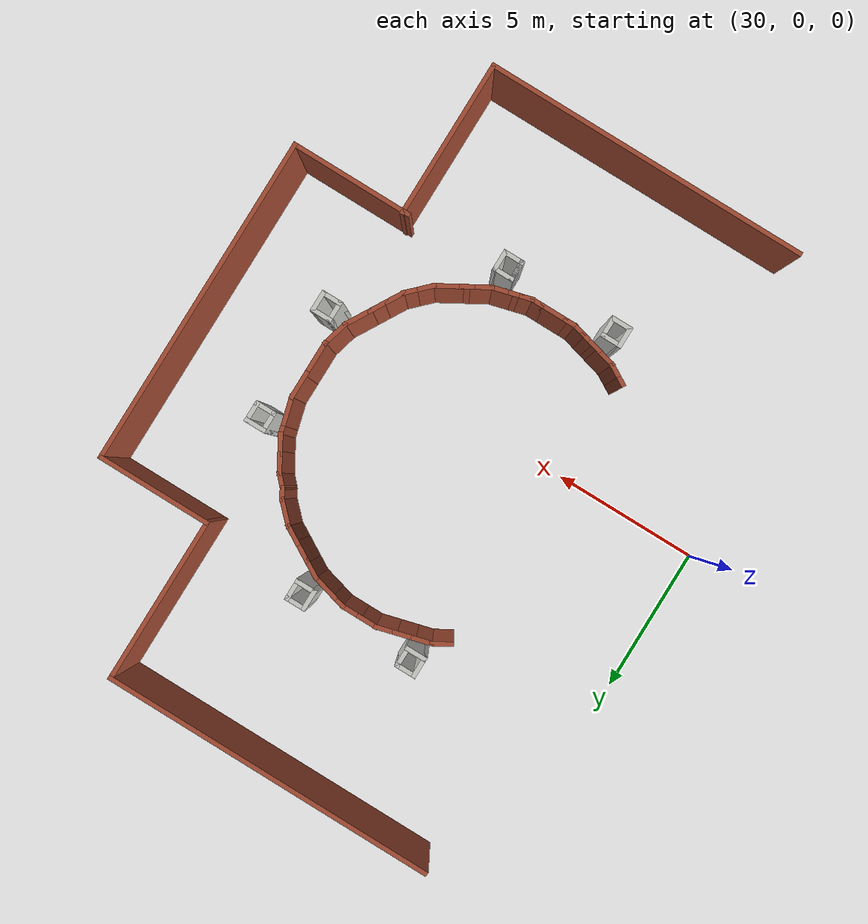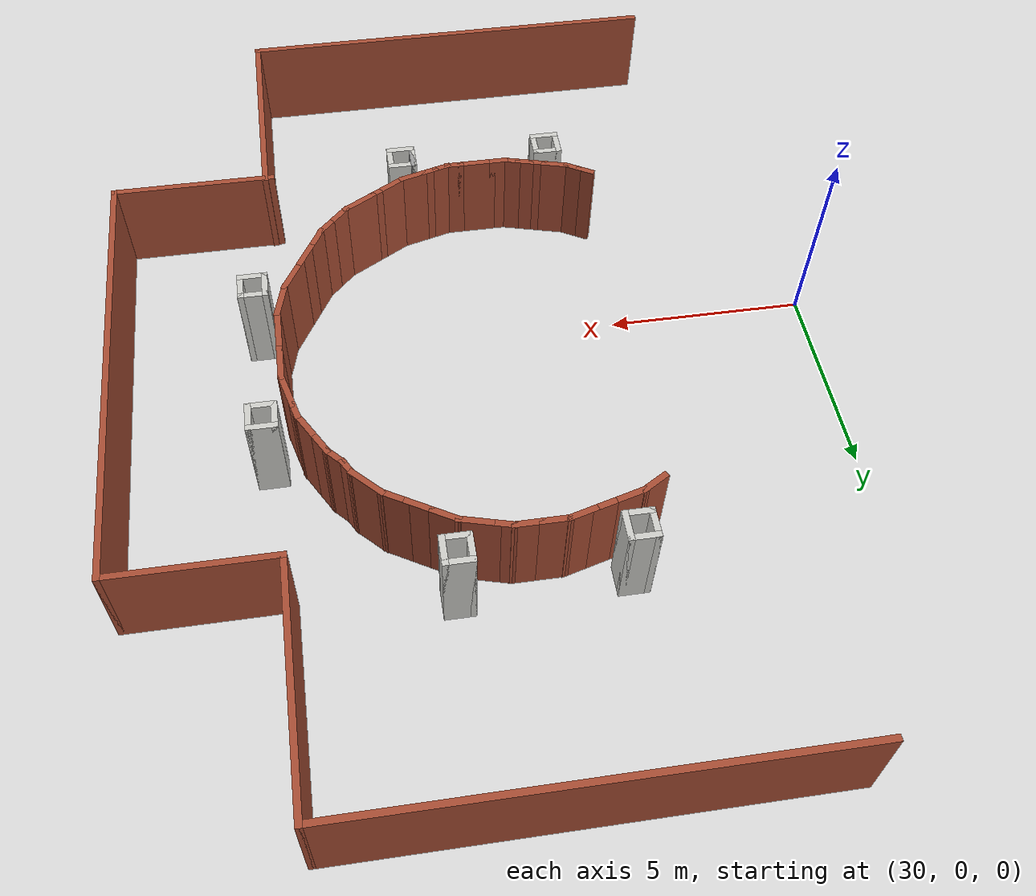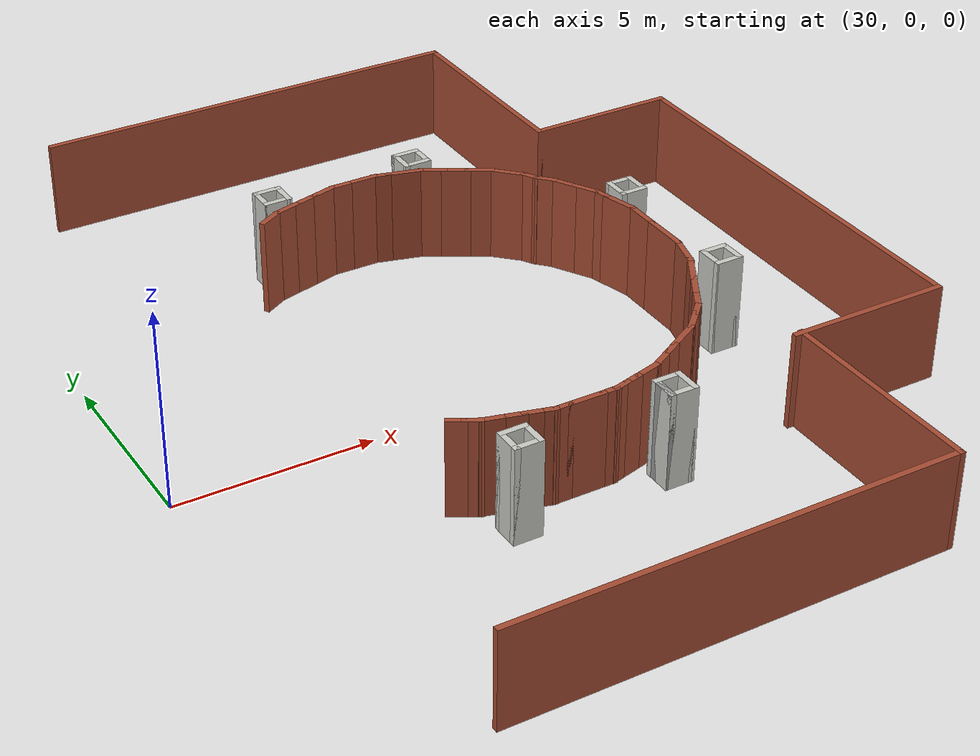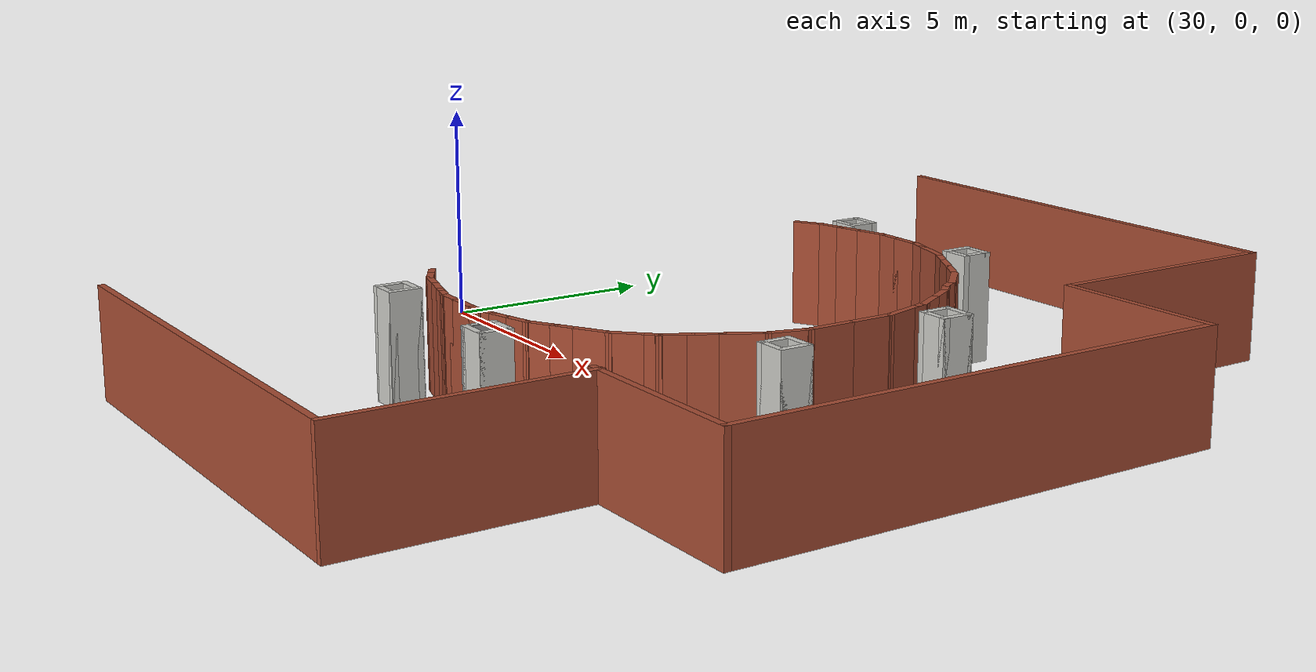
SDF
<sdf version="1.7">
 <model name="Planta1_TD">
  <pose>-6.73335 -7.75071 0 0 -0 0</pose>
  <link name="Wall_182">
   <collision name="Wall_182_Collision">
    <geometry><box><size>11.25 0.15 2.5</size></box></geometry>
    <pose>0 0 1.25 0 -0 0</pose>
   </collision>
   <visual name="Wall_182_Visual">
    <pose>0 0 1.25 0 -0 0</pose>
    <geometry><box><size>11.25 0.15 2.5</size></box></geometry>
    <material>
     <script><uri>file://media/materials/scripts/gazebo.material</uri><name>Gazebo/Bricks</name></script>
     <ambient>1 1 1 1</ambient>
    </material>
    <meta><layer>0</layer></meta>
   </visual>
   <pose>44.8522 -1.83801 0 0 -0 0</pose>
  </link>
  <link name="Wall_183">
   <collision name="Wall_183_Collision">
    <geometry><box><size>5.5 0.15 2.5</size></box></geometry>
    <pose>0 0 1.25 0 -0 0</pose>
   </collision>
   <visual name="Wall_183_Visual">
    <pose>0 0 1.25 0 -0 0</pose>
    <geometry><box><size>5.5 0.15 2.5</size></box></geometry>
    <material>
     <script><uri>file://media/materials/scripts/gazebo.material</uri><name>Gazebo/Bricks</name></script>
     <ambient>1 1 1 1</ambient>
    </material>
    <meta><layer>0</layer></meta>
   </visual>
   <pose>50.4022 0.836985 0 0 -0 1.5708</pose>
  </link>
  <link name="Wall_187">
   <collision name="Wall_187_Collision">
    <geometry><box><size>11.5 0.15 2.5</size></box></geometry>
    <pose>0 0 1.25 0 -0 0</pose>
   </collision>
   <visual name="Wall_187_Visual">
    <pose>0 0 1.25 0 -0 0</pose>
    <geometry><box><size>11.5 0.15 2.5</size></box></geometry>
    <material>
     <script><uri>file://media/materials/scripts/gazebo.material</uri><name>Gazebo/Bricks</name></script>
     <ambient>1 1 1 1</ambient>
    </material>
    <meta><layer>0</layer></meta>
   </visual>
   <pose>44.8115 20.4264 0 0 -0 0</pose>
  </link>
  <link name="Wall_188">
   <collision name="Wall_188_Collision">
    <geometry><box><size>5.75 0.15 2.5</size></box></geometry>
    <pose>0 0 1.25 0 -0 0</pose>
   </collision>
   <visual name="Wall_188_Visual">
    <pose>0 0 1.25 0 -0 0</pose>
    <geometry><box><size>5.75 0.15 2.5</size></box></geometry>
    <material>
     <script><uri>file://media/materials/scripts/gazebo.material</uri><name>Gazebo/Bricks</name></script>
     <ambient>1 1 1 1</ambient>
    </material>
    <meta><layer>0</layer></meta>
   </visual>
   <pose>50.4865 17.6264 0 0 -0 -1.5708</pose>
  </link>
  <link name="Wall_189">
   <collision name="Wall_189_Collision">
    <geometry><box><size>4 0.15 2.5</size></box></geometry>
    <pose>0 0 1.25 0 -0 0</pose>
   </collision>
   <visual name="Wall_189_Visual">
    <pose>0 0 1.25 0 -0 0</pose>
    <geometry><box><size>4 0.15 2.5</size></box></geometry>
    <material>
     <script><uri>file://media/materials/scripts/gazebo.material</uri><name>Gazebo/Bricks</name></script>
     <ambient>1 1 1 1</ambient>
    </material>
    <meta><layer>0</layer></meta>
   </visual>
   <pose>52.4115 14.8264 0 0 -0 0</pose>
  </link>
  <link name="Wall_190">
   <collision name="Wall_190_Collision">
    <geometry><box><size>11.5 0.15 2.5</size></box></geometry>
    <pose>0 0 1.25 0 -0 0</pose>
   </collision>
   <visual name="Wall_190_Visual">
    <pose>0 0 1.25 0 -0 0</pose>
    <geometry><box><size>11.5 0.15 2.5</size></box></geometry>
    <material>
     <script><uri>file://media/materials/scripts/gazebo.material</uri><name>Gazebo/Bricks</name></script>
     <ambient>1 1 1 1</ambient>
    </material>
    <meta><layer>0</layer></meta>
   </visual>
   <pose>54.3365 9.1514 0 0 -0 -1.5708</pose>
  </link>
  <link name="Wall_191">
   <collision name="Wall_191_Collision">
    <geometry><box><size>4.25 0.15 2.5</size></box></geometry>
    <pose>0 0 1.25 0 -0 0</pose>
   </collision>
   <visual name="Wall_191_Visual">
    <pose>0 0 1.25 0 -0 0</pose>
    <geometry><box><size>4.25 0.15 2.5</size></box></geometry>
    <material>
     <script><uri>file://media/materials/scripts/gazebo.material</uri><name>Gazebo/Bricks</name></script>
     <ambient>1 1 1 1</ambient>
    </material>
    <meta><layer>0</layer></meta>
   </visual>
   <pose>52.2865 3.4764 0 0 -0 3.14159</pose>
  </link>
  <link name="Wall_264">
   <collision name="Wall_264_Collision">
    <geometry><box><size>0.75 0.15 2.5</size></box></geometry>
    <pose>0 0 1.25 0 -0 0</pose>
   </collision>
   <visual name="Wall_264_Visual">
    <pose>0 0 1.25 0 -0 0</pose>
    <geometry><box><size>0.75 0.15 2.5</size></box></geometry>
    <material>
     <script><uri>file://media/materials/scripts/gazebo.material</uri><name>Gazebo/CeilingTiled</name></script>
     <ambient>1 1 1 1</ambient>
    </material>
    <meta><layer>0</layer></meta>
   </visual>
   <pose>42.8999 15.4624 0 0 -0 0</pose>
  </link>
  <link name="Wall_265">
   <collision name="Wall_265_Collision">
    <geometry><box><size>0.75 0.15 2.5</size></box></geometry>
    <pose>0 0 1.25 0 -0 0</pose>
   </collision>
   <visual name="Wall_265_Visual">
    <pose>0 0 1.25 0 -0 0</pose>
    <geometry><box><size>0.75 0.15 2.5</size></box></geometry>
    <material>
     <script><uri>file://media/materials/scripts/gazebo.material</uri><name>Gazebo/CeilingTiled</name></script>
     <ambient>1 1 1 1</ambient>
    </material>
    <meta><layer>0</layer></meta>
   </visual>
   <pose>43.1999 15.1624 0 0 -0 -1.5708</pose>
  </link>
  <link name="Wall_266">
   <collision name="Wall_266_Collision">
    <geometry><box><size>0.75 0.15 2.5</size></box></geometry>
    <pose>0 0 1.25 0 -0 0</pose>
   </collision>
   <visual name="Wall_266_Visual">
    <pose>0 0 1.25 0 -0 0</pose>
    <geometry><box><size>0.75 0.15 2.5</size></box></geometry>
    <material>
     <script><uri>file://media/materials/scripts/gazebo.material</uri><name>Gazebo/CeilingTiled</name></script>
     <ambient>1 1 1 1</ambient>
    </material>
    <meta><layer>0</layer></meta>
   </visual>
   <pose>42.8999 14.8624 0 0 -0 3.14159</pose>
  </link>
  <link name="Wall_267">
   <collision name="Wall_267_Collision">
    <geometry><box><size>0.75 0.15 2.5</size></box></geometry>
    <pose>0 0 1.25 0 -0 0</pose>
   </collision>
   <visual name="Wall_267_Visual">
    <pose>0 0 1.25 0 -0 0</pose>
    <geometry><box><size>0.75 0.15 2.5</size></box></geometry>
    <material>
     <script><uri>file://media/materials/scripts/gazebo.material</uri><name>Gazebo/CeilingTiled</name></script>
     <ambient>1 1 1 1</ambient>
    </material>
    <meta><layer>0</layer></meta>
   </visual>
   <pose>42.5999 15.1624 0 0 -0 1.5708</pose>
  </link>
  <link name="Wall_269">
   <collision name="Wall_269_Collision">
    <geometry><box><size>0.75 0.15 2.5</size></box></geometry>
    <pose>0 0 1.25 0 -0 0</pose>
   </collision>
   <visual name="Wall_269_Visual">
    <pose>0 0 1.25 0 -0 0</pose>
    <geometry><box><size>0.75 0.15 2.5</size></box></geometry>
    <material>
     <script><uri>file://media/materials/scripts/gazebo.material</uri><name>Gazebo/CeilingTiled</name></script>
     <ambient>1 1 1 1</ambient>
    </material>
    <meta><layer>0</layer></meta>
   </visual>
   <pose>46.8623 15.4923 0 0 -0 0</pose>
  </link>
  <link name="Wall_270">
   <collision name="Wall_270_Collision">
    <geometry><box><size>0.75 0.15 2.5</size></box></geometry>
    <pose>0 0 1.25 0 -0 0</pose>
   </collision>
   <visual name="Wall_270_Visual">
    <pose>0 0 1.25 0 -0 0</pose>
    <geometry><box><size>0.75 0.15 2.5</size></box></geometry>
    <material>
     <script><uri>file://media/materials/scripts/gazebo.material</uri><name>Gazebo/CeilingTiled</name></script>
     <ambient>1 1 1 1</ambient>
    </material>
    <meta><layer>0</layer></meta>
   </visual>
   <pose>47.1623 15.1923 0 0 -0 -1.5708</pose>
  </link>
  <link name="Wall_271">
   <collision name="Wall_271_Collision">
    <geometry><box><size>0.75 0.15 2.5</size></box></geometry>
    <pose>0 0 1.25 0 -0 0</pose>
   </collision>
   <visual name="Wall_271_Visual">
    <pose>0 0 1.25 0 -0 0</pose>
    <geometry><box><size>0.75 0.15 2.5</size></box></geometry>
    <material>
     <script><uri>file://media/materials/scripts/gazebo.material</uri><name>Gazebo/CeilingTiled</name></script>
     <ambient>1 1 1 1</ambient>
    </material>
    <meta><layer>0</layer></meta>
   </visual>
   <pose>46.8623 14.8923 0 0 -0 3.14159</pose>
  </link>
  <link name="Wall_272">
   <collision name="Wall_272_Collision">
    <geometry><box><size>0.75 0.15 2.5</size></box></geometry>
    <pose>0 0 1.25 0 -0 0</pose>
   </collision>
   <visual name="Wall_272_Visual">
    <pose>0 0 1.25 0 -0 0</pose>
    <geometry><box><size>0.75 0.15 2.5</size></box></geometry>
    <material>
     <script><uri>file://media/materials/scripts/gazebo.material</uri><name>Gazebo/CeilingTiled</name></script>
     <ambient>1 1 1 1</ambient>
    </material>
    <meta><layer>0</layer></meta>
   </visual>
   <pose>46.5623 15.1923 0 0 -0 1.5708</pose>
  </link>
  <link name="Wall_274">
   <collision name="Wall_274_Collision">
    <geometry><box><size>0.75 0.15 2.5</size></box></geometry>
    <pose>0 0 1.25 0 -0 0</pose>
   </collision>
   <visual name="Wall_274_Visual">
    <pose>0 0 1.25 0 -0 0</pose>
    <geometry><box><size>0.75 0.15 2.5</size></box></geometry>
    <material>
     <script><uri>file://media/materials/scripts/gazebo.material</uri><name>Gazebo/CeilingTiled</name></script>
     <ambient>1 1 1 1</ambient>
    </material>
    <meta><layer>0</layer></meta>
   </visual>
   <pose>50.8098 11.485 0 0 -0 0</pose>
  </link>
  <link name="Wall_275">
   <collision name="Wall_275_Collision">
    <geometry><box><size>0.75 0.15 2.5</size></box></geometry>
    <pose>0 0 1.25 0 -0 0</pose>
   </collision>
   <visual name="Wall_275_Visual">
    <pose>0 0 1.25 0 -0 0</pose>
    <geometry><box><size>0.75 0.15 2.5</size></box></geometry>
    <material>
     <script><uri>file://media/materials/scripts/gazebo.material</uri><name>Gazebo/CeilingTiled</name></script>
     <ambient>1 1 1 1</ambient>
    </material>
    <meta><layer>0</layer></meta>
   </visual>
   <pose>51.1098 11.185 0 0 -0 -1.5708</pose>
  </link>
  <link name="Wall_276">
   <collision name="Wall_276_Collision">
    <geometry><box><size>0.75 0.15 2.5</size></box></geometry>
    <pose>0 0 1.25 0 -0 0</pose>
   </collision>
   <visual name="Wall_276_Visual">
    <pose>0 0 1.25 0 -0 0</pose>
    <geometry><box><size>0.75 0.15 2.5</size></box></geometry>
    <material>
     <script><uri>file://media/materials/scripts/gazebo.material</uri><name>Gazebo/CeilingTiled</name></script>
     <ambient>1 1 1 1</ambient>
    </material>
    <meta><layer>0</layer></meta>
   </visual>
   <pose>50.8098 10.885 0 0 -0 3.14159</pose>
  </link>
  <link name="Wall_277">
   <collision name="Wall_277_Collision">
    <geometry><box><size>0.75 0.15 2.5</size></box></geometry>
    <pose>0 0 1.25 0 -0 0</pose>
   </collision>
   <visual name="Wall_277_Visual">
    <pose>0 0 1.25 0 -0 0</pose>
    <geometry><box><size>0.75 0.15 2.5</size></box></geometry>
    <material>
     <script><uri>file://media/materials/scripts/gazebo.material</uri><name>Gazebo/CeilingTiled</name></script>
     <ambient>1 1 1 1</ambient>
    </material>
    <meta><layer>0</layer></meta>
   </visual>
   <pose>50.5098 11.185 0 0 -0 1.5708</pose>
  </link>
  <link name="Wall_279">
   <collision name="Wall_279_Collision">
    <geometry><box><size>0.75 0.15 2.5</size></box></geometry>
    <pose>0 0 1.25 0 -0 0</pose>
   </collision>
   <visual name="Wall_279_Visual">
    <pose>0 0 1.25 0 -0 0</pose>
    <geometry><box><size>0.75 0.15 2.5</size></box></geometry>
    <material>
     <script><uri>file://media/materials/scripts/gazebo.material</uri><name>Gazebo/CeilingTiled</name></script>
     <ambient>1 1 1 1</ambient>
    </material>
    <meta><layer>0</layer></meta>
   </visual>
   <pose>50.8696 7.52258 0 0 -0 0</pose>
  </link>
  <link name="Wall_280">
   <collision name="Wall_280_Collision">
    <geometry><box><size>0.75 0.15 2.5</size></box></geometry>
    <pose>0 0 1.25 0 -0 0</pose>
   </collision>
   <visual name="Wall_280_Visual">
    <pose>0 0 1.25 0 -0 0</pose>
    <geometry><box><size>0.75 0.15 2.5</size></box></geometry>
    <material>
     <script><uri>file://media/materials/scripts/gazebo.material</uri><name>Gazebo/CeilingTiled</name></script>
     <ambient>1 1 1 1</ambient>
    </material>
    <meta><layer>0</layer></meta>
   </visual>
   <pose>51.1696 7.22258 0 0 -0 -1.5708</pose>
  </link>
  <link name="Wall_281">
   <collision name="Wall_281_Collision">
    <geometry><box><size>0.75 0.15 2.5</size></box></geometry>
    <pose>0 0 1.25 0 -0 0</pose>
   </collision>
   <visual name="Wall_281_Visual">
    <pose>0 0 1.25 0 -0 0</pose>
    <geometry><box><size>0.75 0.15 2.5</size></box></geometry>
    <material>
     <script><uri>file://media/materials/scripts/gazebo.material</uri><name>Gazebo/CeilingTiled</name></script>
     <ambient>1 1 1 1</ambient>
    </material>
    <meta><layer>0</layer></meta>
   </visual>
   <pose>50.8696 6.92258 0 0 -0 3.14159</pose>
  </link>
  <link name="Wall_282">
   <collision name="Wall_282_Collision">
    <geometry><box><size>0.75 0.15 2.5</size></box></geometry>
    <pose>0 0 1.25 0 -0 0</pose>
   </collision>
   <visual name="Wall_282_Visual">
    <pose>0 0 1.25 0 -0 0</pose>
    <geometry><box><size>0.75 0.15 2.5</size></box></geometry>
    <material>
     <script><uri>file://media/materials/scripts/gazebo.material</uri><name>Gazebo/CeilingTiled</name></script>
     <ambient>1 1 1 1</ambient>
    </material>
    <meta><layer>0</layer></meta>
   </visual>
   <pose>50.5696 7.22258 0 0 -0 1.5708</pose>
  </link>
  <link name="Wall_285">
   <collision name="Wall_285_Collision">
    <geometry><box><size>0.75 0.15 2.5</size></box></geometry>
    <pose>0 0 1.25 0 -0 0</pose>
   </collision>
   <visual name="Wall_285_Visual">
    <pose>0 0 1.25 0 -0 0</pose>
    <geometry><box><size>0.75 0.15 2.5</size></box></geometry>
    <material>
     <script><uri>file://media/materials/scripts/gazebo.material</uri><name>Gazebo/CeilingTiled</name></script>
     <ambient>1 1 1 1</ambient>
    </material>
    <meta><layer>0</layer></meta>
   </visual>
   <pose>46.7578 3.50191 0 0 -0 0</pose>
  </link>
  <link name="Wall_286">
   <collision name="Wall_286_Collision">
    <geometry><box><size>0.75 0.15 2.5</size></box></geometry>
    <pose>0 0 1.25 0 -0 0</pose>
   </collision>
   <visual name="Wall_286_Visual">
    <pose>0 0 1.25 0 -0 0</pose>
    <geometry><box><size>0.75 0.15 2.5</size></box></geometry>
    <material>
     <script><uri>file://media/materials/scripts/gazebo.material</uri><name>Gazebo/CeilingTiled</name></script>
     <ambient>1 1 1 1</ambient>
    </material>
    <meta><layer>0</layer></meta>
   </visual>
   <pose>47.0578 3.20191 0 0 -0 -1.5708</pose>
  </link>
  <link name="Wall_287">
   <collision name="Wall_287_Collision">
    <geometry><box><size>0.75 0.15 2.5</size></box></geometry>
    <pose>0 0 1.25 0 -0 0</pose>
   </collision>
   <visual name="Wall_287_Visual">
    <pose>0 0 1.25 0 -0 0</pose>
    <geometry><box><size>0.75 0.15 2.5</size></box></geometry>
    <material>
     <script><uri>file://media/materials/scripts/gazebo.material</uri><name>Gazebo/CeilingTiled</name></script>
     <ambient>1 1 1 1</ambient>
    </material>
    <meta><layer>0</layer></meta>
   </visual>
   <pose>46.7578 2.90191 0 0 -0 3.14159</pose>
  </link>
  <link name="Wall_288">
   <collision name="Wall_288_Collision">
    <geometry><box><size>0.75 0.15 2.5</size></box></geometry>
    <pose>0 0 1.25 0 -0 0</pose>
   </collision>
   <visual name="Wall_288_Visual">
    <pose>0 0 1.25 0 -0 0</pose>
    <geometry><box><size>0.75 0.15 2.5</size></box></geometry>
    <material>
     <script><uri>file://media/materials/scripts/gazebo.material</uri><name>Gazebo/Grey</name></script>
     <ambient>1 1 1 1</ambient>
    </material>
    <meta><layer>0</layer></meta>
   </visual>
   <pose>46.4578 3.20191 0 0 -0 1.5708</pose>
  </link>
  <link name="Wall_289">
   <collision name="Wall_289_Collision">
    <geometry><box><size>0.75 0.15 2.5</size></box></geometry>
    <pose>0 0 1.25 0 -0 0</pose>
   </collision>
   <visual name="Wall_289_Visual">
    <pose>0 0 1.25 0 -0 0</pose>
    <geometry><box><size>0.75 0.15 2.5</size></box></geometry>
    <material>
     <script><uri>file://media/materials/scripts/gazebo.material</uri><name>Gazebo/CeilingTiled</name></script>
     <ambient>1 1 1 1</ambient>
    </material>
    <meta><layer>0</layer></meta>
   </visual>
   <pose>46.4578 3.20191 0 0 -0 -1.5708</pose>
  </link>
  <link name="Wall_291">
   <collision name="Wall_291_Collision">
    <geometry><box><size>0.75 0.15 2.5</size></box></geometry>
    <pose>0 0 1.25 0 -0 0</pose>
   </collision>
   <visual name="Wall_291_Visual">
    <pose>0 0 1.25 0 -0 0</pose>
    <geometry><box><size>0.75 0.15 2.5</size></box></geometry>
    <material>
     <script><uri>file://media/materials/scripts/gazebo.material</uri><name>Gazebo/CeilingTiled</name></script>
     <ambient>1 1 1 1</ambient>
    </material>
    <meta><layer>0</layer></meta>
   </visual>
   <pose>42.8402 3.49559 0 0 -0 0</pose>
  </link>
  <link name="Wall_292">
   <collision name="Wall_292_Collision">
    <geometry><box><size>0.75 0.15 2.5</size></box></geometry>
    <pose>0 0 1.25 0 -0 0</pose>
   </collision>
   <visual name="Wall_292_Visual">
    <pose>0 0 1.25 0 -0 0</pose>
    <geometry><box><size>0.75 0.15 2.5</size></box></geometry>
    <material>
     <script><uri>file://media/materials/scripts/gazebo.material</uri><name>Gazebo/CeilingTiled</name></script>
     <ambient>1 1 1 1</ambient>
    </material>
    <meta><layer>0</layer></meta>
   </visual>
   <pose>43.1402 3.19559 0 0 -0 -1.5708</pose>
  </link>
  <link name="Wall_293">
   <collision name="Wall_293_Collision">
    <geometry><box><size>0.75 0.15 2.5</size></box></geometry>
    <pose>0 0 1.25 0 -0 0</pose>
   </collision>
   <visual name="Wall_293_Visual">
    <pose>0 0 1.25 0 -0 0</pose>
    <geometry><box><size>0.75 0.15 2.5</size></box></geometry>
    <material>
     <script><uri>file://media/materials/scripts/gazebo.material</uri><name>Gazebo/CeilingTiled</name></script>
     <ambient>1 1 1 1</ambient>
    </material>
    <meta><layer>0</layer></meta>
   </visual>
   <pose>42.8402 2.89559 0 0 -0 3.14159</pose>
  </link>
  <link name="Wall_294">
   <collision name="Wall_294_Collision">
    <geometry><box><size>0.75 0.15 2.5</size></box></geometry>
    <pose>0 0 1.25 0 -0 0</pose>
   </collision>
   <visual name="Wall_294_Visual">
    <pose>0 0 1.25 0 -0 0</pose>
    <geometry><box><size>0.75 0.15 2.5</size></box></geometry>
    <material>
     <script><uri>file://media/materials/scripts/gazebo.material</uri><name>Gazebo/CeilingTiled</name></script>
     <ambient>1 1 1 1</ambient>
    </material>
    <meta><layer>0</layer></meta>
   </visual>
   <pose>42.5402 3.19559 0 0 -0 1.5708</pose>
  </link>
  <link name="Wall_324">
   <collision name="Wall_324_Collision">
    <geometry><box><size>0.75 0.15 2.5</size></box></geometry>
    <pose>0 0 1.25 0 -0 0</pose>
   </collision>
   <visual name="Wall_324_Visual">
    <pose>0 0 1.25 0 -0 0</pose>
    <geometry><box><size>0.75 0.15 2.5</size></box></geometry>
    <material>
     <script><uri>file://media/materials/scripts/gazebo.material</uri><name>Gazebo/Bricks</name></script>
     <ambient>1 1 1 1</ambient>
    </material>
    <meta><layer>0</layer></meta>
   </visual>
   <pose>42.3859 14.1911 0 0 -0 0.523599</pose>
  </link>
  <link name="Wall_325">
   <collision name="Wall_325_Collision">
    <geometry><box><size>0.75 0.15 2.5</size></box></geometry>
    <pose>0 0 1.25 0 -0 0</pose>
   </collision>
   <visual name="Wall_325_Visual">
    <pose>0 0 1.25 0 -0 0</pose>
    <geometry><box><size>0.75 0.15 2.5</size></box></geometry>
    <material>
     <script><uri>file://media/materials/scripts/gazebo.material</uri><name>Gazebo/Bricks</name></script>
     <ambient>1 1 1 1</ambient>
    </material>
    <meta><layer>0</layer></meta>
   </visual>
   <pose>42.9355 14.4188 0 0 -0 0.261799</pose>
  </link>
  <link name="Wall_326">
   <collision name="Wall_326_Collision">
    <geometry><box><size>0.75 0.15 2.5</size></box></geometry>
    <pose>0 0 1.25 0 -0 0</pose>
   </collision>
   <visual name="Wall_326_Visual">
    <pose>0 0 1.25 0 -0 0</pose>
    <geometry><box><size>0.75 0.15 2.5</size></box></geometry>
    <material>
     <script><uri>file://media/materials/scripts/gazebo.material</uri><name>Gazebo/Bricks</name></script>
     <ambient>1 1 1 1</ambient>
    </material>
    <meta><layer>0</layer></meta>
   </visual>
   <pose>43.5151 14.5741 0 0 -0 0.261799</pose>
  </link>
  <link name="Wall_327">
   <collision name="Wall_327_Collision">
    <geometry><box><size>0.75 0.15 2.5</size></box></geometry>
    <pose>0 0 1.25 0 -0 0</pose>
   </collision>
   <visual name="Wall_327_Visual">
    <pose>0 0 1.25 0 -0 0</pose>
    <geometry><box><size>0.75 0.15 2.5</size></box></geometry>
    <material>
     <script><uri>file://media/materials/scripts/gazebo.material</uri><name>Gazebo/Bricks</name></script>
     <ambient>1 1 1 1</ambient>
    </material>
    <meta><layer>0</layer></meta>
   </visual>
   <pose>44.0946 14.7293 0 0 -0 0.261799</pose>
  </link>
  <link name="Wall_328">
   <collision name="Wall_328_Collision">
    <geometry><box><size>0.75 0.15 2.5</size></box></geometry>
    <pose>0 0 1.25 0 -0 0</pose>
   </collision>
   <visual name="Wall_328_Visual">
    <pose>0 0 1.25 0 -0 0</pose>
    <geometry><box><size>0.75 0.15 2.5</size></box></geometry>
    <material>
     <script><uri>file://media/materials/scripts/gazebo.material</uri><name>Gazebo/Bricks</name></script>
     <ambient>1 1 1 1</ambient>
    </material>
    <meta><layer>0</layer></meta>
   </visual>
   <pose>44.6844 14.807 0 0 -0 0</pose>
  </link>
  <link name="Wall_329">
   <collision name="Wall_329_Collision">
    <geometry><box><size>0.75 0.15 2.5</size></box></geometry>
    <pose>0 0 1.25 0 -0 0</pose>
   </collision>
   <visual name="Wall_329_Visual">
    <pose>0 0 1.25 0 -0 0</pose>
    <geometry><box><size>0.75 0.15 2.5</size></box></geometry>
    <material>
     <script><uri>file://media/materials/scripts/gazebo.material</uri><name>Gazebo/Bricks</name></script>
     <ambient>1 1 1 1</ambient>
    </material>
    <meta><layer>0</layer></meta>
   </visual>
   <pose>45.2844 14.807 0 0 -0 0</pose>
  </link>
  <link name="Wall_330">
   <collision name="Wall_330_Collision">
    <geometry><box><size>0.5 0.15 2.5</size></box></geometry>
    <pose>0 0 1.25 0 -0 0</pose>
   </collision>
   <visual name="Wall_330_Visual">
    <pose>0 0 1.25 0 -0 0</pose>
    <geometry><box><size>0.5 0.15 2.5</size></box></geometry>
    <material>
     <script><uri>file://media/materials/scripts/gazebo.material</uri><name>Gazebo/Bricks</name></script>
     <ambient>1 1 1 1</ambient>
    </material>
    <meta><layer>0</layer></meta>
   </visual>
   <pose>45.7534 14.7617 0 0 -0 -0.261799</pose>
  </link>
  <link name="Wall_332">
   <collision name="Wall_332_Collision">
    <geometry><box><size>1 0.15 2.5</size></box></geometry>
    <pose>0 0 1.25 0 -0 0</pose>
   </collision>
   <visual name="Wall_332_Visual">
    <pose>0 0 1.25 0 -0 0</pose>
    <geometry><box><size>1 0.15 2.5</size></box></geometry>
    <material>
     <script><uri>file://media/materials/scripts/gazebo.material</uri><name>Gazebo/Bricks</name></script>
     <ambient>1 1 1 1</ambient>
    </material>
    <meta><layer>0</layer></meta>
   </visual>
   <pose>46.333 14.6064 0 0 -0 -0.261799</pose>
  </link>
  <link name="Wall_333">
   <collision name="Wall_333_Collision">
    <geometry><box><size>0.75 0.15 2.5</size></box></geometry>
    <pose>0 0 1.25 0 -0 0</pose>
   </collision>
   <visual name="Wall_333_Visual">
    <pose>0 0 1.25 0 -0 0</pose>
    <geometry><box><size>0.75 0.15 2.5</size></box></geometry>
    <material>
     <script><uri>file://media/materials/scripts/gazebo.material</uri><name>Gazebo/Bricks</name></script>
     <ambient>1 1 1 1</ambient>
    </material>
    <meta><layer>0</layer></meta>
   </visual>
   <pose>47.0033 14.3464 0 0 -0 -0.523599</pose>
  </link>
  <link name="Wall_334">
   <collision name="Wall_334_Collision">
    <geometry><box><size>0.75 0.15 2.5</size></box></geometry>
    <pose>0 0 1.25 0 -0 0</pose>
   </collision>
   <visual name="Wall_334_Visual">
    <pose>0 0 1.25 0 -0 0</pose>
    <geometry><box><size>0.75 0.15 2.5</size></box></geometry>
    <material>
     <script><uri>file://media/materials/scripts/gazebo.material</uri><name>Gazebo/Bricks</name></script>
     <ambient>1 1 1 1</ambient>
    </material>
    <meta><layer>0</layer></meta>
   </visual>
   <pose>47.5229 14.0464 0 0 -0 -0.523599</pose>
  </link>
  <link name="Wall_335">
   <collision name="Wall_335_Collision">
    <geometry><box><size>0.75 0.15 2.5</size></box></geometry>
    <pose>0 0 1.25 0 -0 0</pose>
   </collision>
   <visual name="Wall_335_Visual">
    <pose>0 0 1.25 0 -0 0</pose>
    <geometry><box><size>0.75 0.15 2.5</size></box></geometry>
    <material>
     <script><uri>file://media/materials/scripts/gazebo.material</uri><name>Gazebo/Bricks</name></script>
     <ambient>1 1 1 1</ambient>
    </material>
    <meta><layer>0</layer></meta>
   </visual>
   <pose>48.0426 13.7464 0 0 -0 -0.523599</pose>
  </link>
  <link name="Wall_336">
   <collision name="Wall_336_Collision">
    <geometry><box><size>1 0.15 2.5</size></box></geometry>
    <pose>0 0 1.25 0 -0 0</pose>
   </collision>
   <visual name="Wall_336_Visual">
    <pose>0 0 1.25 0 -0 0</pose>
    <geometry><box><size>1 0.15 2.5</size></box></geometry>
    <material>
     <script><uri>file://media/materials/scripts/gazebo.material</uri><name>Gazebo/Bricks</name></script>
     <ambient>1 1 1 1</ambient>
    </material>
    <meta><layer>0</layer></meta>
   </visual>
   <pose>48.6029 13.2959 0 0 -0 -0.785398</pose>
  </link>
  <link name="Wall_337">
   <collision name="Wall_337_Collision">
    <geometry><box><size>0.5 0.15 2.5</size></box></geometry>
    <pose>0 0 1.25 0 -0 0</pose>
   </collision>
   <visual name="Wall_337_Visual">
    <pose>0 0 1.25 0 -0 0</pose>
    <geometry><box><size>0.5 0.15 2.5</size></box></geometry>
    <material>
     <script><uri>file://media/materials/scripts/gazebo.material</uri><name>Gazebo/Bricks</name></script>
     <ambient>1 1 1 1</ambient>
    </material>
    <meta><layer>0</layer></meta>
   </visual>
   <pose>48.9909 12.8438 0 0 -0 -1.0472</pose>
  </link>
  <link name="Wall_339">
   <collision name="Wall_339_Collision">
    <geometry><box><size>1 0.15 2.5</size></box></geometry>
    <pose>0 0 1.25 0 -0 0</pose>
   </collision>
   <visual name="Wall_339_Visual">
    <pose>0 0 1.25 0 -0 0</pose>
    <geometry><box><size>1 0.15 2.5</size></box></geometry>
    <material>
     <script><uri>file://media/materials/scripts/gazebo.material</uri><name>Gazebo/Bricks</name></script>
     <ambient>1 1 1 1</ambient>
    </material>
    <meta><layer>0</layer></meta>
   </visual>
   <pose>44.8013 3.70178 0 0 -0 0</pose>
  </link>
  <link name="Wall_340">
   <collision name="Wall_340_Collision">
    <geometry><box><size>0.5 0.15 2.5</size></box></geometry>
    <pose>0 0 1.25 0 -0 0</pose>
   </collision>
   <visual name="Wall_340_Visual">
    <pose>0 0 1.25 0 -0 0</pose>
    <geometry><box><size>0.5 0.15 2.5</size></box></geometry>
    <material>
     <script><uri>file://media/materials/scripts/gazebo.material</uri><name>Gazebo/Bricks</name></script>
     <ambient>1 1 1 1</ambient>
    </material>
    <meta><layer>0</layer></meta>
   </visual>
   <pose>45.4013 3.70178 0 0 -0 0</pose>
  </link>
  <link name="Wall_341">
   <collision name="Wall_341_Collision">
    <geometry><box><size>0.5 0.15 2.5</size></box></geometry>
    <pose>0 0 1.25 0 -0 0</pose>
   </collision>
   <visual name="Wall_341_Visual">
    <pose>0 0 1.25 0 -0 0</pose>
    <geometry><box><size>0.5 0.15 2.5</size></box></geometry>
    <material>
     <script><uri>file://media/materials/scripts/gazebo.material</uri><name>Gazebo/Bricks</name></script>
     <ambient>1 1 1 1</ambient>
    </material>
    <meta><layer>0</layer></meta>
   </visual>
   <pose>45.7453 3.74708 0 0 -0 0.261799</pose>
  </link>
  <link name="Wall_342">
   <collision name="Wall_342_Collision">
    <geometry><box><size>0.5 0.15 2.5</size></box></geometry>
    <pose>0 0 1.25 0 -0 0</pose>
   </collision>
   <visual name="Wall_342_Visual">
    <pose>0 0 1.25 0 -0 0</pose>
    <geometry><box><size>0.5 0.15 2.5</size></box></geometry>
    <material>
     <script><uri>file://media/materials/scripts/gazebo.material</uri><name>Gazebo/Bricks</name></script>
     <ambient>1 1 1 1</ambient>
    </material>
    <meta><layer>0</layer></meta>
   </visual>
   <pose>46.0834 3.83766 0 0 -0 0.261799</pose>
  </link>
  <link name="Wall_343">
   <collision name="Wall_343_Collision">
    <geometry><box><size>0.75 0.15 2.5</size></box></geometry>
    <pose>0 0 1.25 0 -0 0</pose>
   </collision>
   <visual name="Wall_343_Visual">
    <pose>0 0 1.25 0 -0 0</pose>
    <geometry><box><size>0.75 0.15 2.5</size></box></geometry>
    <material>
     <script><uri>file://media/materials/scripts/gazebo.material</uri><name>Gazebo/Bricks</name></script>
     <ambient>1 1 1 1</ambient>
    </material>
    <meta><layer>0</layer></meta>
   </visual>
   <pose>46.5422 3.9606 0 0 -0 0.261799</pose>
  </link>
  <link name="Wall_344">
   <collision name="Wall_344_Collision">
    <geometry><box><size>0.75 0.15 2.5</size></box></geometry>
    <pose>0 0 1.25 0 -0 0</pose>
   </collision>
   <visual name="Wall_344_Visual">
    <pose>0 0 1.25 0 -0 0</pose>
    <geometry><box><size>0.75 0.15 2.5</size></box></geometry>
    <material>
     <script><uri>file://media/materials/scripts/gazebo.material</uri><name>Gazebo/Bricks</name></script>
     <ambient>1 1 1 1</ambient>
    </material>
    <meta><layer>0</layer></meta>
   </visual>
   <pose>47.0918 4.18825 0 0 -0 0.523599</pose>
  </link>
  <link name="Wall_345">
   <collision name="Wall_345_Collision">
    <geometry><box><size>0.5 0.15 2.5</size></box></geometry>
    <pose>0 0 1.25 0 -0 0</pose>
   </collision>
   <visual name="Wall_345_Visual">
    <pose>0 0 1.25 0 -0 0</pose>
    <geometry><box><size>0.5 0.15 2.5</size></box></geometry>
    <material>
     <script><uri>file://media/materials/scripts/gazebo.material</uri><name>Gazebo/Bricks</name></script>
     <ambient>1 1 1 1</ambient>
    </material>
    <meta><layer>0</layer></meta>
   </visual>
   <pose>47.5032 4.42575 0 0 -0 0.523599</pose>
  </link>
  <link name="Wall_346">
   <collision name="Wall_346_Collision">
    <geometry><box><size>1 0.15 2.5</size></box></geometry>
    <pose>0 0 1.25 0 -0 0</pose>
   </collision>
   <visual name="Wall_346_Visual">
    <pose>0 0 1.25 0 -0 0</pose>
    <geometry><box><size>1 0.15 2.5</size></box></geometry>
    <material>
     <script><uri>file://media/materials/scripts/gazebo.material</uri><name>Gazebo/Bricks</name></script>
     <ambient>1 1 1 1</ambient>
    </material>
    <meta><layer>0</layer></meta>
   </visual>
   <pose>48.0228 4.72575 0 0 -0 0.523599</pose>
  </link>
  <link name="Wall_347">
   <collision name="Wall_347_Collision">
    <geometry><box><size>0.75 0.15 2.5</size></box></geometry>
    <pose>0 0 1.25 0 -0 0</pose>
   </collision>
   <visual name="Wall_347_Visual">
    <pose>0 0 1.25 0 -0 0</pose>
    <geometry><box><size>0.75 0.15 2.5</size></box></geometry>
    <material>
     <script><uri>file://media/materials/scripts/gazebo.material</uri><name>Gazebo/Bricks</name></script>
     <ambient>1 1 1 1</ambient>
    </material>
    <meta><layer>0</layer></meta>
   </visual>
   <pose>48.603 5.15038 0 0 -0 0.785398</pose>
  </link>
  <link name="Wall_348">
   <collision name="Wall_348_Collision">
    <geometry><box><size>0.5 0.15 2.5</size></box></geometry>
    <pose>0 0 1.25 0 -0 0</pose>
   </collision>
   <visual name="Wall_348_Visual">
    <pose>0 0 1.25 0 -0 0</pose>
    <geometry><box><size>0.5 0.15 2.5</size></box></geometry>
    <material>
     <script><uri>file://media/materials/scripts/gazebo.material</uri><name>Gazebo/Bricks</name></script>
     <ambient>1 1 1 1</ambient>
    </material>
    <meta><layer>0</layer></meta>
   </visual>
   <pose>48.9388 5.48625 0 0 -0 0.785398</pose>
  </link>
  <link name="Wall_349">
   <collision name="Wall_349_Collision">
    <geometry><box><size>0.75 0.15 2.5</size></box></geometry>
    <pose>0 0 1.25 0 -0 0</pose>
   </collision>
   <visual name="Wall_349_Visual">
    <pose>0 0 1.25 0 -0 0</pose>
    <geometry><box><size>0.75 0.15 2.5</size></box></geometry>
    <material>
     <script><uri>file://media/materials/scripts/gazebo.material</uri><name>Gazebo/Bricks</name></script>
     <ambient>1 1 1 1</ambient>
    </material>
    <meta><layer>0</layer></meta>
   </visual>
   <pose>49.2126 5.86981 0 0 -0 1.0472</pose>
  </link>
  <link name="Wall_351">
   <collision name="Wall_351_Collision">
    <geometry><box><size>0.75 0.15 2.5</size></box></geometry>
    <pose>0 0 1.25 0 -0 0</pose>
   </collision>
   <visual name="Wall_351_Visual">
    <pose>0 0 1.25 0 -0 0</pose>
    <geometry><box><size>0.75 0.15 2.5</size></box></geometry>
    <material>
     <script><uri>file://media/materials/scripts/gazebo.material</uri><name>Gazebo/Bricks</name></script>
     <ambient>1 1 1 1</ambient>
    </material>
    <meta><layer>0</layer></meta>
   </visual>
   <pose>49.5126 6.38942 0 0 -0 1.0472</pose>
  </link>
  <link name="Wall_352">
   <collision name="Wall_352_Collision">
    <geometry><box><size>1 0.15 2.5</size></box></geometry>
    <pose>0 0 1.25 0 -0 0</pose>
   </collision>
   <visual name="Wall_352_Visual">
    <pose>0 0 1.25 0 -0 0</pose>
    <geometry><box><size>1 0.15 2.5</size></box></geometry>
    <material>
     <script><uri>file://media/materials/scripts/gazebo.material</uri><name>Gazebo/Bricks</name></script>
     <ambient>1 1 1 1</ambient>
    </material>
    <meta><layer>0</layer></meta>
   </visual>
   <pose>49.8751 7.01729 0 0 -0 1.0472</pose>
  </link>
  <link name="Wall_353">
   <collision name="Wall_353_Collision">
    <geometry><box><size>1 0.15 2.5</size></box></geometry>
    <pose>0 0 1.25 0 -0 0</pose>
   </collision>
   <visual name="Wall_353_Visual">
    <pose>0 0 1.25 0 -0 0</pose>
    <geometry><box><size>1 0.15 2.5</size></box></geometry>
    <material>
     <script><uri>file://media/materials/scripts/gazebo.material</uri><name>Gazebo/Bricks</name></script>
     <ambient>1 1 1 1</ambient>
    </material>
    <meta><layer>0</layer></meta>
   </visual>
   <pose>50.1976 7.79587 0 0 -0 1.309</pose>
  </link>
  <link name="Wall_354">
   <collision name="Wall_354_Collision">
    <geometry><box><size>1.25 0.15 2.5</size></box></geometry>
    <pose>0 0 1.25 0 -0 0</pose>
   </collision>
   <visual name="Wall_354_Visual">
    <pose>0 0 1.25 0 -0 0</pose>
    <geometry><box><size>1.25 0.15 2.5</size></box></geometry>
    <material>
     <script><uri>file://media/materials/scripts/gazebo.material</uri><name>Gazebo/Bricks</name></script>
     <ambient>1 1 1 1</ambient>
    </material>
    <meta><layer>0</layer></meta>
   </visual>
   <pose>50.3076 8.75639 0 0 -0 1.5708</pose>
  </link>
  <link name="Wall_356">
   <collision name="Wall_356_Collision">
    <geometry><box><size>1 0.15 2.5</size></box></geometry>
    <pose>0 0 1.25 0 -0 0</pose>
   </collision>
   <visual name="Wall_356_Visual">
    <pose>0 0 1.25 0 -0 0</pose>
    <geometry><box><size>1 0.15 2.5</size></box></geometry>
    <material>
     <script><uri>file://media/materials/scripts/gazebo.material</uri><name>Gazebo/Bricks</name></script>
     <ambient>1 1 1 1</ambient>
    </material>
    <meta><layer>0</layer></meta>
   </visual>
   <pose>50.3076 9.73139 0 0 -0 1.5708</pose>
  </link>
  <link name="Wall_357">
   <collision name="Wall_357_Collision">
    <geometry><box><size>1 0.15 2.5</size></box></geometry>
    <pose>0 0 1.25 0 -0 0</pose>
   </collision>
   <visual name="Wall_357_Visual">
    <pose>0 0 1.25 0 -0 0</pose>
    <geometry><box><size>1 0.15 2.5</size></box></geometry>
    <material>
     <script><uri>file://media/materials/scripts/gazebo.material</uri><name>Gazebo/Bricks</name></script>
     <ambient>1 1 1 1</ambient>
    </material>
    <meta><layer>0</layer></meta>
   </visual>
   <pose>50.1976 10.5669 0 0 -0 1.8326</pose>
  </link>
  <link name="Wall_358">
   <collision name="Wall_358_Collision">
    <geometry><box><size>0.5 0.15 2.5</size></box></geometry>
    <pose>0 0 1.25 0 -0 0</pose>
   </collision>
   <visual name="Wall_358_Visual">
    <pose>0 0 1.25 0 -0 0</pose>
    <geometry><box><size>0.5 0.15 2.5</size></box></geometry>
    <material>
     <script><uri>file://media/materials/scripts/gazebo.material</uri><name>Gazebo/Bricks</name></script>
     <ambient>1 1 1 1</ambient>
    </material>
    <meta><layer>0</layer></meta>
   </visual>
   <pose>50.0423 11.1465 0 0 -0 1.8326</pose>
  </link>
  <link name="Wall_359">
   <collision name="Wall_359_Collision">
    <geometry><box><size>0.75 0.15 2.5</size></box></geometry>
    <pose>0 0 1.25 0 -0 0</pose>
   </collision>
   <visual name="Wall_359_Visual">
    <pose>0 0 1.25 0 -0 0</pose>
    <geometry><box><size>0.75 0.15 2.5</size></box></geometry>
    <material>
     <script><uri>file://media/materials/scripts/gazebo.material</uri><name>Gazebo/Bricks</name></script>
     <ambient>1 1 1 1</ambient>
    </material>
    <meta><layer>0</layer></meta>
   </visual>
   <pose>49.847 11.5753 0 0 -0 2.0944</pose>
  </link>
  <link name="Wall_360">
   <collision name="Wall_360_Collision">
    <geometry><box><size>0.75 0.15 2.5</size></box></geometry>
    <pose>0 0 1.25 0 -0 0</pose>
   </collision>
   <visual name="Wall_360_Visual">
    <pose>0 0 1.25 0 -0 0</pose>
    <geometry><box><size>0.75 0.15 2.5</size></box></geometry>
    <material>
     <script><uri>file://media/materials/scripts/gazebo.material</uri><name>Gazebo/Bricks</name></script>
     <ambient>1 1 1 1</ambient>
    </material>
    <meta><layer>0</layer></meta>
   </visual>
   <pose>49.547 12.0949 0 0 -0 2.0944</pose>
  </link>
  <link name="Wall_361">
   <collision name="Wall_361_Collision">
    <geometry><box><size>0.614148 0.15 2.5</size></box></geometry>
    <pose>0 0 1.25 0 -0 0</pose>
   </collision>
   <visual name="Wall_361_Visual">
    <pose>0 0 1.25 0 -0 0</pose>
    <geometry><box><size>0.614148 0.15 2.5</size></box></geometry>
    <material>
     <script><uri>file://media/materials/scripts/gazebo.material</uri><name>Gazebo/Bricks</name></script>
     <ambient>1 1 1 1</ambient>
    </material>
    <meta><layer>0</layer></meta>
   </visual>
   <pose>49.2377 12.5235 0 0 -0 2.32736</pose>
  </link>
  <link name="Wall_363">
   <collision name="Wall_363_Collision">
    <geometry><box><size>0.5 0.15 2.5</size></box></geometry>
    <pose>0 0 1.25 0 -0 0</pose>
   </collision>
   <visual name="Wall_363_Visual">
    <pose>0 0 1.25 0 -0 0</pose>
    <geometry><box><size>0.5 0.15 2.5</size></box></geometry>
    <material>
     <script><uri>file://media/materials/scripts/gazebo.material</uri><name>Gazebo/Bricks</name></script>
     <ambient>1 1 1 1</ambient>
    </material>
    <meta><layer>0</layer></meta>
   </visual>
   <pose>44.2013 3.70178 0 0 -0 3.14159</pose>
  </link>
  <link name="Wall_364">
   <collision name="Wall_364_Collision">
    <geometry><box><size>0.5 0.15 2.5</size></box></geometry>
    <pose>0 0 1.25 0 -0 0</pose>
   </collision>
   <visual name="Wall_364_Visual">
    <pose>0 0 1.25 0 -0 0</pose>
    <geometry><box><size>0.5 0.15 2.5</size></box></geometry>
    <material>
     <script><uri>file://media/materials/scripts/gazebo.material</uri><name>Gazebo/Bricks</name></script>
     <ambient>1 1 1 1</ambient>
    </material>
    <meta><layer>0</layer></meta>
   </visual>
   <pose>43.8573 3.74708 0 0 -0 2.87979</pose>
  </link>
  <link name="Wall_365">
   <collision name="Wall_365_Collision">
    <geometry><box><size>0.5 0.15 2.5</size></box></geometry>
    <pose>0 0 1.25 0 -0 0</pose>
   </collision>
   <visual name="Wall_365_Visual">
    <pose>0 0 1.25 0 -0 0</pose>
    <geometry><box><size>0.5 0.15 2.5</size></box></geometry>
    <material>
     <script><uri>file://media/materials/scripts/gazebo.material</uri><name>Gazebo/Bricks</name></script>
     <ambient>1 1 1 1</ambient>
    </material>
    <meta><layer>0</layer></meta>
   </visual>
   <pose>43.5192 3.83766 0 0 -0 2.87979</pose>
  </link>
  <link name="Wall_366">
   <collision name="Wall_366_Collision">
    <geometry><box><size>0.5 0.15 2.5</size></box></geometry>
    <pose>0 0 1.25 0 -0 0</pose>
   </collision>
   <visual name="Wall_366_Visual">
    <pose>0 0 1.25 0 -0 0</pose>
    <geometry><box><size>0.5 0.15 2.5</size></box></geometry>
    <material>
     <script><uri>file://media/materials/scripts/gazebo.material</uri><name>Gazebo/Bricks</name></script>
     <ambient>1 1 1 1</ambient>
    </material>
    <meta><layer>0</layer></meta>
   </visual>
   <pose>43.1811 3.92825 0 0 -0 2.87979</pose>
  </link>
  <link name="Wall_367">
   <collision name="Wall_367_Collision">
    <geometry><box><size>0.75 0.15 2.5</size></box></geometry>
    <pose>0 0 1.25 0 -0 0</pose>
   </collision>
   <visual name="Wall_367_Visual">
    <pose>0 0 1.25 0 -0 0</pose>
    <geometry><box><size>0.75 0.15 2.5</size></box></geometry>
    <material>
     <script><uri>file://media/materials/scripts/gazebo.material</uri><name>Gazebo/Bricks</name></script>
     <ambient>1 1 1 1</ambient>
    </material>
    <meta><layer>0</layer></meta>
   </visual>
   <pose>42.7223 4.05119 0 0 -0 2.87979</pose>
  </link>
  <link name="Wall_368">
   <collision name="Wall_368_Collision">
    <geometry><box><size>0.5 0.15 2.5</size></box></geometry>
    <pose>0 0 1.25 0 -0 0</pose>
   </collision>
   <visual name="Wall_368_Visual">
    <pose>0 0 1.25 0 -0 0</pose>
    <geometry><box><size>0.5 0.15 2.5</size></box></geometry>
    <material>
     <script><uri>file://media/materials/scripts/gazebo.material</uri><name>Gazebo/Bricks</name></script>
     <ambient>1 1 1 1</ambient>
    </material>
    <meta><layer>0</layer></meta>
   </visual>
   <pose>42.281 4.21633 0 0 -0 2.61799</pose>
  </link>
  <link name="Wall_369">
   <collision name="Wall_369_Collision">
    <geometry><box><size>0.5 0.15 2.5</size></box></geometry>
    <pose>0 0 1.25 0 -0 0</pose>
   </collision>
   <visual name="Wall_369_Visual">
    <pose>0 0 1.25 0 -0 0</pose>
    <geometry><box><size>0.5 0.15 2.5</size></box></geometry>
    <material>
     <script><uri>file://media/materials/scripts/gazebo.material</uri><name>Gazebo/Bricks</name></script>
     <ambient>1 1 1 1</ambient>
    </material>
    <meta><layer>0</layer></meta>
   </visual>
   <pose>41.9778 4.39133 0 0 -0 2.61799</pose>
  </link>
  <static>1</static>
 </model>
</sdf>
